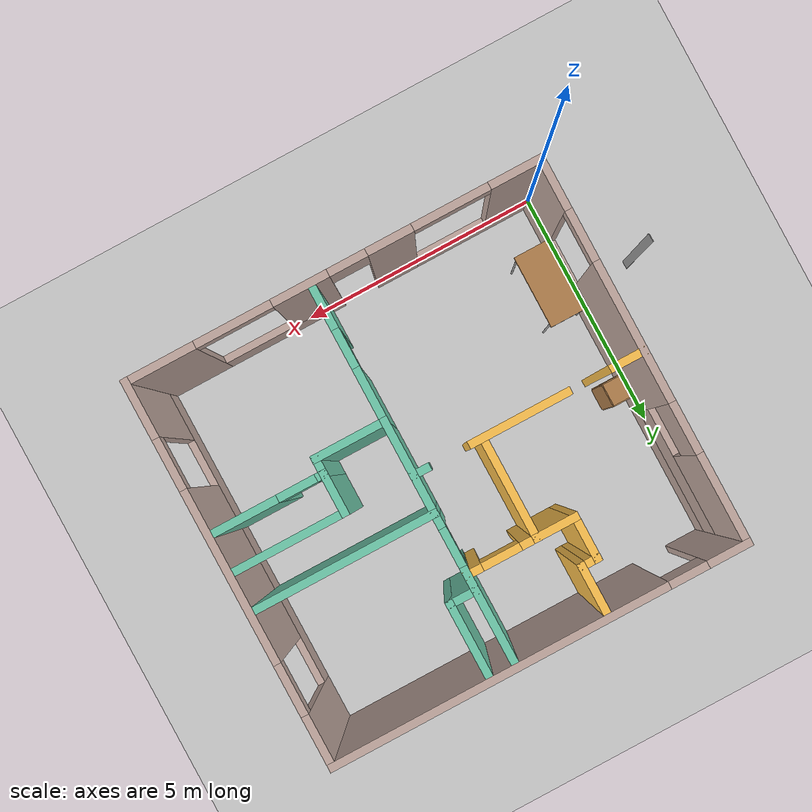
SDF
<sdf version="1.6">
 <world name="default">
  <plugin name="hello" filename="libhello.so"/>
  <light name="sun" type="directional">
   <pose>0 0 10 0 -0 0</pose>
   <diffuse>0.8 0.8 0.8 1</diffuse>
   <specular>0.2 0.2 0.2 1</specular>
   <attenuation>
    <range>1000</range>
    <constant>0.9</constant>
    <linear>0.01</linear>
    <quadratic>0.001</quadratic>
   </attenuation>
   <direction>-0.5 0.1 -0.9</direction>
   <spot><inner_angle>0</inner_angle><outer_angle>0</outer_angle><falloff>0</falloff></spot>
  </light>
  <model name="ground_plane">
   <static>1</static>
   <link name="link">
    <collision name="collision">
     <geometry><plane><normal>0 0 1</normal><size>100 100</size></plane></geometry>
     <surface>
      <contact><collide_bitmask>65535</collide_bitmask></contact>
      <friction><ode><mu>100</mu><mu2>50</mu2></ode></friction>
     </surface>
    </collision>
    <visual name="visual">
     <cast_shadows>0</cast_shadows>
     <geometry><plane><normal>0 0 1</normal><size>100 100</size></plane></geometry>
     <material>
      <script><uri>file://media/materials/scripts/gazebo.material</uri><name>Gazebo/Grey</name></script>
     </material>
    </visual>
   </link>
  </model>
  <gravity>0 0 -9.8</gravity>
  <magnetic_field>6e-06 2.3e-05 -4.2e-05</magnetic_field>
  <atmosphere type="adiabatic"/>
  <physics name="default_physics" default="0" type="ode">
   <max_step_size>0.001</max_step_size>
   <real_time_factor>1</real_time_factor>
   <real_time_update_rate>1000</real_time_update_rate>
  </physics>
  <scene><ambient>0.4 0.4 0.4 1</ambient><background>0.7 0.7 0.7 1</background><shadows>1</shadows></scene>
  <spherical_coordinates>
   <surface_model>EARTH_WGS84</surface_model>
   <latitude_deg>0</latitude_deg>
   <longitude_deg>0</longitude_deg>
   <elevation>0</elevation>
   <heading_deg>0</heading_deg>
  </spherical_coordinates>
  <model name="apartment">
   <pose>4.14003 3.78049 0 0 -0 0</pose>
   <link name="Door_1">
    <collision name="Door_1_Collision">
     <geometry><box><size>0.01 0.17 2</size></box></geometry>
     <pose>0 0 1 0 -0 0</pose>
    </collision>
    <visual name="Door_1_Visual">
     <pose>0 0 1 0 -0 0</pose>
     <geometry><box><size>0.01 0.17 2</size></box></geometry>
     <material>
      <script><uri>file://media/materials/scripts/gazebo.material</uri><name>Gazebo/Grey</name></script>
     </material>
    </visual>
    <pose>-5.25474 -1.71616 0 0 0 -3.11558</pose>
   </link>
   <link name="Wall_0">
    <pose>-0 3.75 0 0 -0 0</pose>
    <visual name="Wall_0_Visual_0">
     <pose>-3.7 0 1.25 0 -0 0</pose>
     <geometry><box><size>0.85 0.15 2.5</size></box></geometry>
     <material>
      <script><uri>file://media/materials/scripts/gazebo.material</uri><name>Gazebo/Grey</name></script>
      <ambient>0.760784 0.662745 0.627451 1</ambient>
     </material>
     <meta><layer>0</layer></meta>
    </visual>
    <collision name="Wall_0_Collision_0">
     <geometry><box><size>0.85 0.15 2.5</size></box></geometry>
     <pose>-3.7 0 1.25 0 -0 0</pose>
    </collision>
    <visual name="Wall_0_Visual_1">
     <pose>0.8 0 1.25 0 -0 0</pose>
     <geometry><box><size>6.65 0.15 2.5</size></box></geometry>
     <material>
      <script><uri>file://media/materials/scripts/gazebo.material</uri><name>Gazebo/Grey</name></script>
      <ambient>0.760784 0.662745 0.627451 1</ambient>
     </material>
     <meta><layer>0</layer></meta>
    </visual>
    <collision name="Wall_0_Collision_1">
     <geometry><box><size>6.65 0.15 2.5</size></box></geometry>
     <pose>0.8 0 1.25 0 -0 0</pose>
    </collision>
    <visual name="Wall_0_Visual_2">
     <pose>-2.9 0 2.25 0 -0 0</pose>
     <geometry><box><size>0.75 0.15 0.5</size></box></geometry>
     <material>
      <script><uri>file://media/materials/scripts/gazebo.material</uri><name>Gazebo/Grey</name></script>
      <ambient>0.760784 0.662745 0.627451 1</ambient>
     </material>
     <meta><layer>0</layer></meta>
    </visual>
    <collision name="Wall_0_Collision_2">
     <geometry><box><size>0.75 0.15 0.5</size></box></geometry>
     <pose>-2.9 0 2.25 0 -0 0</pose>
    </collision>
   </link>
   <link name="Wall_1">
    <pose>4.05 -0 0 0 -0 -1.5708</pose>
    <visual name="Wall_1_Visual_0">
     <pose>-3.2875 0 1.25 0 -0 0</pose>
     <geometry><box><size>1.075 0.15 2.5</size></box></geometry>
     <material>
      <script><uri>file://media/materials/scripts/gazebo.material</uri><name>Gazebo/Grey</name></script>
      <ambient>0.760784 0.662745 0.627451 1</ambient>
     </material>
     <meta><layer>0</layer></meta>
    </visual>
    <collision name="Wall_1_Collision_0">
     <geometry><box><size>1.075 0.15 2.5</size></box></geometry>
     <pose>-3.2875 0 1.25 0 -0 0</pose>
    </collision>
    <visual name="Wall_1_Visual_1">
     <pose>0.5375 0 0.25 0 -0 0</pose>
     <geometry><box><size>6.575 0.15 0.5</size></box></geometry>
     <material>
      <script><uri>file://media/materials/scripts/gazebo.material</uri><name>Gazebo/Grey</name></script>
      <ambient>0.760784 0.662745 0.627451 1</ambient>
     </material>
     <meta><layer>0</layer></meta>
    </visual>
    <collision name="Wall_1_Collision_1">
     <geometry><box><size>6.575 0.15 0.5</size></box></geometry>
     <pose>0.5375 0 0.25 0 -0 0</pose>
    </collision>
    <visual name="Wall_1_Visual_2">
     <pose>-0.050682 0 1.5 0 -0 0</pose>
     <geometry><box><size>3.39864 0.15 2</size></box></geometry>
     <material>
      <script><uri>file://media/materials/scripts/gazebo.material</uri><name>Gazebo/Grey</name></script>
      <ambient>0.760784 0.662745 0.627451 1</ambient>
     </material>
     <meta><layer>0</layer></meta>
    </visual>
    <collision name="Wall_1_Collision_2">
     <geometry><box><size>3.39864 0.15 2</size></box></geometry>
     <pose>-0.050682 0 1.5 0 -0 0</pose>
    </collision>
    <visual name="Wall_1_Visual_3">
     <pose>3.23682 0 1.5 0 -0 0</pose>
     <geometry><box><size>1.17636 0.15 2</size></box></geometry>
     <material>
      <script><uri>file://media/materials/scripts/gazebo.material</uri><name>Gazebo/Grey</name></script>
      <ambient>0.760784 0.662745 0.627451 1</ambient>
     </material>
     <meta><layer>0</layer></meta>
    </visual>
    <collision name="Wall_1_Collision_3">
     <geometry><box><size>1.17636 0.15 2</size></box></geometry>
     <pose>3.23682 0 1.5 0 -0 0</pose>
    </collision>
    <visual name="Wall_1_Visual_4">
     <pose>-2.25 0 2.4 0 -0 0</pose>
     <geometry><box><size>1 0.15 0.2</size></box></geometry>
     <material>
      <script><uri>file://media/materials/scripts/gazebo.material</uri><name>Gazebo/Grey</name></script>
      <ambient>0.760784 0.662745 0.627451 1</ambient>
     </material>
     <meta><layer>0</layer></meta>
    </visual>
    <collision name="Wall_1_Collision_4">
     <geometry><box><size>1 0.15 0.2</size></box></geometry>
     <pose>-2.25 0 2.4 0 -0 0</pose>
    </collision>
    <visual name="Wall_1_Visual_5">
     <pose>2.14864 0 2.4 0 -0 0</pose>
     <geometry><box><size>1 0.15 0.2</size></box></geometry>
     <material>
      <script><uri>file://media/materials/scripts/gazebo.material</uri><name>Gazebo/Grey</name></script>
      <ambient>0.760784 0.662745 0.627451 1</ambient>
     </material>
     <meta><layer>0</layer></meta>
    </visual>
    <collision name="Wall_1_Collision_5">
     <geometry><box><size>1 0.15 0.2</size></box></geometry>
     <pose>2.14864 0 2.4 0 -0 0</pose>
    </collision>
   </link>
   <link name="Wall_10">
    <collision name="Wall_10_Collision">
     <geometry><box><size>0.9 0.15 2.5</size></box></geometry>
     <pose>0 0 1.25 0 -0 0</pose>
    </collision>
    <visual name="Wall_10_Visual">
     <pose>0 0 1.25 0 -0 0</pose>
     <geometry><box><size>0.9 0.15 2.5</size></box></geometry>
     <material>
      <script><uri>file://media/materials/scripts/gazebo.material</uri><name>Gazebo/Grey</name></script>
      <ambient>0.435294 0.796078 0.67451 1</ambient>
     </material>
     <meta><layer>0</layer></meta>
    </visual>
    <pose>1.8 -0.375 0 0 -0 1.5708</pose>
   </link>
   <link name="Wall_11">
    <collision name="Wall_11_Collision">
     <geometry><box><size>2.25 0.15 2.5</size></box></geometry>
     <pose>0 0 1.25 0 -0 0</pose>
    </collision>
    <visual name="Wall_11_Visual">
     <pose>0 0 1.25 0 -0 0</pose>
     <geometry><box><size>2.25 0.15 2.5</size></box></geometry>
     <material>
      <script><uri>file://media/materials/scripts/gazebo.material</uri><name>Gazebo/Grey</name></script>
      <ambient>0.435294 0.796078 0.67451 1</ambient>
     </material>
     <meta><layer>0</layer></meta>
    </visual>
    <pose>2.85 -0 0 0 -0 0</pose>
   </link>
   <link name="Wall_13">
    <collision name="Wall_13_Collision">
     <geometry><box><size>3.6 0.15 2.5</size></box></geometry>
     <pose>0 0 1.25 0 -0 0</pose>
    </collision>
    <visual name="Wall_13_Visual">
     <pose>0 0 1.25 0 -0 0</pose>
     <geometry><box><size>3.6 0.15 2.5</size></box></geometry>
     <material>
      <script><uri>file://media/materials/scripts/gazebo.material</uri><name>Gazebo/Grey</name></script>
      <ambient>0.435294 0.796078 0.67451 1</ambient>
     </material>
     <meta><layer>0</layer></meta>
    </visual>
    <pose>2.175 0.75 0 0 -0 3.14159</pose>
   </link>
   <link name="Wall_14">
    <collision name="Wall_14_Collision">
     <geometry><box><size>1.95 0.15 2.5</size></box></geometry>
     <pose>0 0 1.25 0 -0 0</pose>
    </collision>
    <visual name="Wall_14_Visual">
     <pose>0 0 1.25 0 -0 0</pose>
     <geometry><box><size>1.95 0.15 2.5</size></box></geometry>
     <material>
      <script><uri>file://media/materials/scripts/gazebo.material</uri><name>Gazebo/Grey</name></script>
      <ambient>0.435294 0.796078 0.67451 1</ambient>
     </material>
     <meta><layer>0</layer></meta>
    </visual>
    <pose>0.45 -0.15 0 0 -0 -1.5708</pose>
   </link>
   <link name="Wall_16">
    <pose>0.45 2.175 0 0 -0 1.5708</pose>
    <visual name="Wall_16_Visual_0">
     <pose>-1.31932 0 1.25 0 -0 0</pose>
     <geometry><box><size>0.361363 0.15 2.5</size></box></geometry>
     <material>
      <script><uri>file://media/materials/scripts/gazebo.material</uri><name>Gazebo/Grey</name></script>
      <ambient>0.435294 0.796078 0.67451 1</ambient>
     </material>
     <meta><layer>0</layer></meta>
    </visual>
    <collision name="Wall_16_Collision_0">
     <geometry><box><size>0.361363 0.15 2.5</size></box></geometry>
     <pose>-1.31932 0 1.25 0 -0 0</pose>
    </collision>
    <visual name="Wall_16_Visual_1">
     <pose>0.555682 0 1.25 0 -0 0</pose>
     <geometry><box><size>1.88864 0.15 2.5</size></box></geometry>
     <material>
      <script><uri>file://media/materials/scripts/gazebo.material</uri><name>Gazebo/Grey</name></script>
      <ambient>0.435294 0.796078 0.67451 1</ambient>
     </material>
     <meta><layer>0</layer></meta>
    </visual>
    <collision name="Wall_16_Collision_1">
     <geometry><box><size>1.88864 0.15 2.5</size></box></geometry>
     <pose>0.555682 0 1.25 0 -0 0</pose>
    </collision>
    <visual name="Wall_16_Visual_2">
     <pose>-0.763637 0 2.25 0 -0 0</pose>
     <geometry><box><size>0.75 0.15 0.5</size></box></geometry>
     <material>
      <script><uri>file://media/materials/scripts/gazebo.material</uri><name>Gazebo/Grey</name></script>
      <ambient>0.435294 0.796078 0.67451 1</ambient>
     </material>
     <meta><layer>0</layer></meta>
    </visual>
    <collision name="Wall_16_Collision_2">
     <geometry><box><size>0.75 0.15 0.5</size></box></geometry>
     <pose>-0.763637 0 2.25 0 -0 0</pose>
    </collision>
   </link>
   <link name="Wall_18">
    <collision name="Wall_18_Collision">
     <geometry><box><size>0.65 0.15 2.5</size></box></geometry>
     <pose>0 0 1.25 0 -0 0</pose>
    </collision>
    <visual name="Wall_18_Visual">
     <pose>0 0 1.25 0 -0 0</pose>
     <geometry><box><size>0.65 0.15 2.5</size></box></geometry>
     <material>
      <script><uri>file://media/materials/scripts/gazebo.material</uri><name>Gazebo/Grey</name></script>
      <ambient>0.435294 0.796078 0.67451 1</ambient>
     </material>
     <meta><layer>0</layer></meta>
    </visual>
    <pose>0.7 2.25 0 0 -0 0</pose>
   </link>
   <link name="Wall_19">
    <collision name="Wall_19_Collision">
     <geometry><box><size>1.5 0.15 2.5</size></box></geometry>
     <pose>0 0 1.25 0 -0 0</pose>
    </collision>
    <visual name="Wall_19_Visual">
     <pose>0 0 1.25 0 -0 0</pose>
     <geometry><box><size>1.5 0.15 2.5</size></box></geometry>
     <material>
      <script><uri>file://media/materials/scripts/gazebo.material</uri><name>Gazebo/Grey</name></script>
      <ambient>0.435294 0.796078 0.67451 1</ambient>
     </material>
     <meta><layer>0</layer></meta>
    </visual>
    <pose>0.95 2.925 0 0 -0 1.5708</pose>
   </link>
   <link name="Wall_2">
    <pose>-0 -3.75 0 0 -0 3.14159</pose>
    <visual name="Wall_2_Visual_0">
     <pose>-3.4125 0 1.25 0 -0 0</pose>
     <geometry><box><size>1.425 0.15 2.5</size></box></geometry>
     <material>
      <script><uri>file://media/materials/scripts/gazebo.material</uri><name>Gazebo/Grey</name></script>
      <ambient>0.760784 0.662745 0.627451 1</ambient>
     </material>
     <meta><layer>0</layer></meta>
    </visual>
    <collision name="Wall_2_Collision_0">
     <geometry><box><size>1.425 0.15 2.5</size></box></geometry>
     <pose>-3.4125 0 1.25 0 -0 0</pose>
    </collision>
    <visual name="Wall_2_Visual_1">
     <pose>1.1 0 1.25 0 -0 0</pose>
     <geometry><box><size>0.899991 0.15 2.5</size></box></geometry>
     <material>
      <script><uri>file://media/materials/scripts/gazebo.material</uri><name>Gazebo/Grey</name></script>
      <ambient>0.760784 0.662745 0.627451 1</ambient>
     </material>
     <meta><layer>0</layer></meta>
    </visual>
    <collision name="Wall_2_Collision_1">
     <geometry><box><size>0.899991 0.15 2.5</size></box></geometry>
     <pose>1.1 0 1.25 0 -0 0</pose>
    </collision>
    <visual name="Wall_2_Visual_2">
     <pose>-1.4 0 0.25 0 -0 0</pose>
     <geometry><box><size>2.60001 0.15 0.5</size></box></geometry>
     <material>
      <script><uri>file://media/materials/scripts/gazebo.material</uri><name>Gazebo/Grey</name></script>
      <ambient>0.760784 0.662745 0.627451 1</ambient>
     </material>
     <meta><layer>0</layer></meta>
    </visual>
    <collision name="Wall_2_Collision_2">
     <geometry><box><size>2.60001 0.15 0.5</size></box></geometry>
     <pose>-1.4 0 0.25 0 -0 0</pose>
    </collision>
    <visual name="Wall_2_Visual_3">
     <pose>2.8375 0 0.25 0 -0 0</pose>
     <geometry><box><size>2.575 0.15 0.5</size></box></geometry>
     <material>
      <script><uri>file://media/materials/scripts/gazebo.material</uri><name>Gazebo/Grey</name></script>
      <ambient>0.760784 0.662745 0.627451 1</ambient>
     </material>
     <meta><layer>0</layer></meta>
    </visual>
    <collision name="Wall_2_Collision_3">
     <geometry><box><size>2.575 0.15 0.5</size></box></geometry>
     <pose>2.8375 0 0.25 0 -0 0</pose>
    </collision>
    <visual name="Wall_2_Visual_4">
     <pose>-0.649995 0 1.5 0 -0 0</pose>
     <geometry><box><size>1.10001 0.15 2</size></box></geometry>
     <material>
      <script><uri>file://media/materials/scripts/gazebo.material</uri><name>Gazebo/Grey</name></script>
      <ambient>0.760784 0.662745 0.627451 1</ambient>
     </material>
     <meta><layer>0</layer></meta>
    </visual>
    <collision name="Wall_2_Collision_4">
     <geometry><box><size>1.10001 0.15 2</size></box></geometry>
     <pose>-0.649995 0 1.5 0 -0 0</pose>
    </collision>
    <visual name="Wall_2_Visual_5">
     <pose>-0.649995 0 1.5 0 -0 0</pose>
     <geometry><box><size>1.10001 0.15 2</size></box></geometry>
     <material>
      <script><uri>file://media/materials/scripts/gazebo.material</uri><name>Gazebo/Grey</name></script>
      <ambient>0.760784 0.662745 0.627451 1</ambient>
     </material>
     <meta><layer>0</layer></meta>
    </visual>
    <collision name="Wall_2_Collision_5">
     <geometry><box><size>1.10001 0.15 2</size></box></geometry>
     <pose>-0.649995 0 1.5 0 -0 0</pose>
    </collision>
    <visual name="Wall_2_Visual_6">
     <pose>3.5875 0 1.5 0 -0 0</pose>
     <geometry><box><size>1.075 0.15 2</size></box></geometry>
     <material>
      <script><uri>file://media/materials/scripts/gazebo.material</uri><name>Gazebo/Grey</name></script>
      <ambient>0.760784 0.662745 0.627451 1</ambient>
     </material>
     <meta><layer>0</layer></meta>
    </visual>
    <collision name="Wall_2_Collision_6">
     <geometry><box><size>1.075 0.15 2</size></box></geometry>
     <pose>3.5875 0 1.5 0 -0 0</pose>
    </collision>
    <visual name="Wall_2_Visual_7">
     <pose>0.275009 0 2.25 0 -0 0</pose>
     <geometry><box><size>0.75 0.15 0.5</size></box></geometry>
     <material>
      <script><uri>file://media/materials/scripts/gazebo.material</uri><name>Gazebo/Grey</name></script>
      <ambient>0.760784 0.662745 0.627451 1</ambient>
     </material>
     <meta><layer>0</layer></meta>
    </visual>
    <collision name="Wall_2_Collision_7">
     <geometry><box><size>0.75 0.15 0.5</size></box></geometry>
     <pose>0.275009 0 2.25 0 -0 0</pose>
    </collision>
    <visual name="Wall_2_Visual_8">
     <pose>0.275009 0 2.25 0 -0 0</pose>
     <geometry><box><size>0.75 0.15 0.5</size></box></geometry>
     <material>
      <script><uri>file://media/materials/scripts/gazebo.material</uri><name>Gazebo/Grey</name></script>
      <ambient>0.760784 0.662745 0.627451 1</ambient>
     </material>
     <meta><layer>0</layer></meta>
    </visual>
    <collision name="Wall_2_Collision_8">
     <geometry><box><size>0.75 0.15 0.5</size></box></geometry>
     <pose>0.275009 0 2.25 0 -0 0</pose>
    </collision>
    <visual name="Wall_2_Visual_9">
     <pose>-1.95 0 2.4 0 -0 0</pose>
     <geometry><box><size>1.5 0.15 0.2</size></box></geometry>
     <material>
      <script><uri>file://media/materials/scripts/gazebo.material</uri><name>Gazebo/Grey</name></script>
      <ambient>0.760784 0.662745 0.627451 1</ambient>
     </material>
     <meta><layer>0</layer></meta>
    </visual>
    <collision name="Wall_2_Collision_9">
     <geometry><box><size>1.5 0.15 0.2</size></box></geometry>
     <pose>-1.95 0 2.4 0 -0 0</pose>
    </collision>
    <visual name="Wall_2_Visual_10">
     <pose>2.3 0 2.4 0 -0 0</pose>
     <geometry><box><size>1.5 0.15 0.2</size></box></geometry>
     <material>
      <script><uri>file://media/materials/scripts/gazebo.material</uri><name>Gazebo/Grey</name></script>
      <ambient>0.760784 0.662745 0.627451 1</ambient>
     </material>
     <meta><layer>0</layer></meta>
    </visual>
    <collision name="Wall_2_Collision_10">
     <geometry><box><size>1.5 0.15 0.2</size></box></geometry>
     <pose>2.3 0 2.4 0 -0 0</pose>
    </collision>
   </link>
   <link name="Wall_25">
    <collision name="Wall_25_Collision">
     <geometry><box><size>0.9 0.15 2.5</size></box></geometry>
     <pose>0 0 1.25 0 -0 0</pose>
    </collision>
    <visual name="Wall_25_Visual">
     <pose>0 0 1.25 0 -0 0</pose>
     <geometry><box><size>0.9 0.15 2.5</size></box></geometry>
     <material>
      <script><uri>file://media/materials/scripts/gazebo.material</uri><name>Gazebo/Grey</name></script>
      <ambient>1 0.764706 0.305882 1</ambient>
     </material>
     <meta><layer>0</layer></meta>
    </visual>
    <pose>-1.275 1.95 0 0 -0 3.14159</pose>
   </link>
   <link name="Wall_26">
    <collision name="Wall_26_Collision">
     <geometry><box><size>0.95 0.15 2.5</size></box></geometry>
     <pose>0 0 1.25 0 -0 0</pose>
    </collision>
    <visual name="Wall_26_Visual">
     <pose>0 0 1.25 0 -0 0</pose>
     <geometry><box><size>0.95 0.15 2.5</size></box></geometry>
     <material>
      <script><uri>file://media/materials/scripts/gazebo.material</uri><name>Gazebo/Grey</name></script>
      <ambient>1 0.764706 0.305882 1</ambient>
     </material>
     <meta><layer>0</layer></meta>
    </visual>
    <pose>-1.65 2.35 0 0 -0 1.5708</pose>
   </link>
   <link name="Wall_27">
    <collision name="Wall_27_Collision">
     <geometry><box><size>0.45 0.15 2.5</size></box></geometry>
     <pose>0 0 1.25 0 -0 0</pose>
    </collision>
    <visual name="Wall_27_Visual">
     <pose>0 0 1.25 0 -0 0</pose>
     <geometry><box><size>0.45 0.15 2.5</size></box></geometry>
     <material>
      <script><uri>file://media/materials/scripts/gazebo.material</uri><name>Gazebo/Grey</name></script>
      <ambient>1 0.764706 0.305882 1</ambient>
     </material>
     <meta><layer>0</layer></meta>
    </visual>
    <pose>-1.5 2.75 0 0 -0 0</pose>
   </link>
   <link name="Wall_28">
    <collision name="Wall_28_Collision">
     <geometry><box><size>1 0.15 2.5</size></box></geometry>
     <pose>0 0 1.25 0 -0 0</pose>
    </collision>
    <visual name="Wall_28_Visual">
     <pose>0 0 1.25 0 -0 0</pose>
     <geometry><box><size>1 0.15 2.5</size></box></geometry>
     <material>
      <script><uri>file://media/materials/scripts/gazebo.material</uri><name>Gazebo/Grey</name></script>
      <ambient>1 0.764706 0.305882 1</ambient>
     </material>
     <meta><layer>0</layer></meta>
    </visual>
    <pose>-1.35 3.175 0 0 -0 1.5708</pose>
   </link>
   <link name="Wall_3">
    <pose>-4.05 -0 0 0 -0 1.5708</pose>
    <visual name="Wall_3_Visual_0">
     <pose>-3.2875 0 1.25 0 -0 0</pose>
     <geometry><box><size>1.075 0.15 2.5</size></box></geometry>
     <material>
      <script><uri>file://media/materials/scripts/gazebo.material</uri><name>Gazebo/Grey</name></script>
      <ambient>0.760784 0.662745 0.627451 1</ambient>
     </material>
     <meta><layer>0</layer></meta>
    </visual>
    <collision name="Wall_3_Collision_0">
     <geometry><box><size>1.075 0.15 2.5</size></box></geometry>
     <pose>-3.2875 0 1.25 0 -0 0</pose>
    </collision>
    <visual name="Wall_3_Visual_1">
     <pose>0.5375 0 0.25 0 -0 0</pose>
     <geometry><box><size>6.575 0.15 0.5</size></box></geometry>
     <material>
      <script><uri>file://media/materials/scripts/gazebo.material</uri><name>Gazebo/Grey</name></script>
      <ambient>0.760784 0.662745 0.627451 1</ambient>
     </material>
     <meta><layer>0</layer></meta>
    </visual>
    <collision name="Wall_3_Collision_1">
     <geometry><box><size>6.575 0.15 0.5</size></box></geometry>
     <pose>0.5375 0 0.25 0 -0 0</pose>
    </collision>
    <visual name="Wall_3_Visual_2">
     <pose>-0.375 0 1.5 0 -0 0</pose>
     <geometry><box><size>2.75 0.15 2</size></box></geometry>
     <material>
      <script><uri>file://media/materials/scripts/gazebo.material</uri><name>Gazebo/Grey</name></script>
      <ambient>0.760784 0.662745 0.627451 1</ambient>
     </material>
     <meta><layer>0</layer></meta>
    </visual>
    <collision name="Wall_3_Collision_2">
     <geometry><box><size>2.75 0.15 2</size></box></geometry>
     <pose>-0.375 0 1.5 0 -0 0</pose>
    </collision>
    <visual name="Wall_3_Visual_3">
     <pose>2.4125 0 0.825 0 -0 0</pose>
     <geometry><box><size>2.825 0.15 0.65</size></box></geometry>
     <material>
      <script><uri>file://media/materials/scripts/gazebo.material</uri><name>Gazebo/Grey</name></script>
      <ambient>0.760784 0.662745 0.627451 1</ambient>
     </material>
     <meta><layer>0</layer></meta>
    </visual>
    <collision name="Wall_3_Collision_3">
     <geometry><box><size>2.825 0.15 0.65</size></box></geometry>
     <pose>2.4125 0 0.825 0 -0 0</pose>
    </collision>
    <visual name="Wall_3_Visual_4">
     <pose>2.9125 0 1.825 0 -0 0</pose>
     <geometry><box><size>1.825 0.15 1.35</size></box></geometry>
     <material>
      <script><uri>file://media/materials/scripts/gazebo.material</uri><name>Gazebo/Grey</name></script>
      <ambient>0.760784 0.662745 0.627451 1</ambient>
     </material>
     <meta><layer>0</layer></meta>
    </visual>
    <collision name="Wall_3_Collision_4">
     <geometry><box><size>1.825 0.15 1.35</size></box></geometry>
     <pose>2.9125 0 1.825 0 -0 0</pose>
    </collision>
    <visual name="Wall_3_Visual_5">
     <pose>1.5 0 2.075 0 -0 0</pose>
     <geometry><box><size>1 0.15 0.85</size></box></geometry>
     <material>
      <script><uri>file://media/materials/scripts/gazebo.material</uri><name>Gazebo/Grey</name></script>
      <ambient>0.760784 0.662745 0.627451 1</ambient>
     </material>
     <meta><layer>0</layer></meta>
    </visual>
    <collision name="Wall_3_Collision_5">
     <geometry><box><size>1 0.15 0.85</size></box></geometry>
     <pose>1.5 0 2.075 0 -0 0</pose>
    </collision>
    <visual name="Wall_3_Visual_6">
     <pose>-2.25 0 2.4 0 -0 0</pose>
     <geometry><box><size>1 0.15 0.2</size></box></geometry>
     <material>
      <script><uri>file://media/materials/scripts/gazebo.material</uri><name>Gazebo/Grey</name></script>
      <ambient>0.760784 0.662745 0.627451 1</ambient>
     </material>
     <meta><layer>0</layer></meta>
    </visual>
    <collision name="Wall_3_Collision_6">
     <geometry><box><size>1 0.15 0.2</size></box></geometry>
     <pose>-2.25 0 2.4 0 -0 0</pose>
    </collision>
   </link>
   <link name="Wall_33">
    <collision name="Wall_33_Collision">
     <geometry><box><size>2 0.15 2.5</size></box></geometry>
     <pose>0 0 1.25 0 -0 0</pose>
    </collision>
    <visual name="Wall_33_Visual">
     <pose>0 0 1.25 0 -0 0</pose>
     <geometry><box><size>2 0.15 2.5</size></box></geometry>
     <material>
      <script><uri>file://media/materials/scripts/gazebo.material</uri><name>Gazebo/Grey</name></script>
      <ambient>1 0.764706 0.305882 1</ambient>
     </material>
     <meta><layer>0</layer></meta>
    </visual>
    <pose>-1.625 -0 0 0 -0 3.14159</pose>
   </link>
   <link name="Wall_35">
    <collision name="Wall_35_Collision">
     <geometry><box><size>0.735 0.15 2.5</size></box></geometry>
     <pose>0 0 1.25 0 -0 0</pose>
    </collision>
    <visual name="Wall_35_Visual">
     <pose>0 0 1.25 0 -0 0</pose>
     <geometry><box><size>0.735 0.15 2.5</size></box></geometry>
     <material>
      <script><uri>file://media/materials/scripts/gazebo.material</uri><name>Gazebo/Grey</name></script>
      <ambient>1 0.764706 0.305882 1</ambient>
     </material>
     <meta><layer>0</layer></meta>
    </visual>
    <pose>-3.7425 -0 0 0 -0 0</pose>
   </link>
   <link name="Wall_38">
    <collision name="Wall_38_Collision">
     <geometry><box><size>0.4 0.15 2.5</size></box></geometry>
     <pose>0 0 1.25 0 -0 0</pose>
    </collision>
    <visual name="Wall_38_Visual">
     <pose>0 0 1.25 0 -0 0</pose>
     <geometry><box><size>0.4 0.15 2.5</size></box></geometry>
     <material>
      <script><uri>file://media/materials/scripts/gazebo.material</uri><name>Gazebo/Grey</name></script>
      <ambient>0.435294 0.796078 0.67451 1</ambient>
     </material>
     <meta><layer>0</layer></meta>
    </visual>
    <pose>0.325 -0 0 0 -0 3.14159</pose>
   </link>
   <link name="Wall_40">
    <collision name="Wall_40_Collision">
     <geometry><box><size>2 0.15 2.5</size></box></geometry>
     <pose>0 0 1.25 0 -0 0</pose>
    </collision>
    <visual name="Wall_40_Visual">
     <pose>0 0 1.25 0 -0 0</pose>
     <geometry><box><size>2 0.15 2.5</size></box></geometry>
     <material>
      <script><uri>file://media/materials/scripts/gazebo.material</uri><name>Gazebo/Grey</name></script>
      <ambient>1 0.764706 0.305882 1</ambient>
     </material>
     <meta><layer>0</layer></meta>
    </visual>
    <pose>-0.9 1.025 0 0 -0 -1.5708</pose>
   </link>
   <link name="Wall_42">
    <pose>-0.225 1.95 0 0 -0 0</pose>
    <visual name="Wall_42_Visual_0">
     <pose>-0.557505 0 1.25 0 -0 0</pose>
     <geometry><box><size>0.384991 0.15 2.5</size></box></geometry>
     <material>
      <script><uri>file://media/materials/scripts/gazebo.material</uri><name>Gazebo/Grey</name></script>
      <ambient>1 0.764706 0.305882 1</ambient>
     </material>
     <meta><layer>0</layer></meta>
    </visual>
    <collision name="Wall_42_Collision_0">
     <geometry><box><size>0.384991 0.15 2.5</size></box></geometry>
     <pose>-0.557505 0 1.25 0 -0 0</pose>
    </collision>
    <visual name="Wall_42_Visual_1">
     <pose>0.567495 0 1.25 0 -0 0</pose>
     <geometry><box><size>0.365009 0.15 2.5</size></box></geometry>
     <material>
      <script><uri>file://media/materials/scripts/gazebo.material</uri><name>Gazebo/Grey</name></script>
      <ambient>1 0.764706 0.305882 1</ambient>
     </material>
     <meta><layer>0</layer></meta>
    </visual>
    <collision name="Wall_42_Collision_1">
     <geometry><box><size>0.365009 0.15 2.5</size></box></geometry>
     <pose>0.567495 0 1.25 0 -0 0</pose>
    </collision>
    <visual name="Wall_42_Visual_2">
     <pose>0.009991 0 2.25 0 -0 0</pose>
     <geometry><box><size>0.75 0.15 0.5</size></box></geometry>
     <material>
      <script><uri>file://media/materials/scripts/gazebo.material</uri><name>Gazebo/Grey</name></script>
      <ambient>1 0.764706 0.305882 1</ambient>
     </material>
     <meta><layer>0</layer></meta>
    </visual>
    <collision name="Wall_42_Collision_2">
     <geometry><box><size>0.75 0.15 0.5</size></box></geometry>
     <pose>0.009991 0 2.25 0 -0 0</pose>
    </collision>
   </link>
   <link name="Wall_5">
    <pose>0.45 -2.325 0 0 -0 1.5708</pose>
    <visual name="Wall_5_Visual_0">
     <pose>-0.934318 0 1.25 0 -0 0</pose>
     <geometry><box><size>0.831364 0.15 2.5</size></box></geometry>
     <material>
      <script><uri>file://media/materials/scripts/gazebo.material</uri><name>Gazebo/Grey</name></script>
      <ambient>0.435294 0.796078 0.67451 1</ambient>
     </material>
     <meta><layer>0</layer></meta>
    </visual>
    <collision name="Wall_5_Collision_0">
     <geometry><box><size>0.831364 0.15 2.5</size></box></geometry>
     <pose>-0.934318 0 1.25 0 -0 0</pose>
    </collision>
    <visual name="Wall_5_Visual_1">
     <pose>0.790682 0 1.25 0 -0 0</pose>
     <geometry><box><size>1.11864 0.15 2.5</size></box></geometry>
     <material>
      <script><uri>file://media/materials/scripts/gazebo.material</uri><name>Gazebo/Grey</name></script>
      <ambient>0.435294 0.796078 0.67451 1</ambient>
     </material>
     <meta><layer>0</layer></meta>
    </visual>
    <collision name="Wall_5_Collision_1">
     <geometry><box><size>1.11864 0.15 2.5</size></box></geometry>
     <pose>0.790682 0 1.25 0 -0 0</pose>
    </collision>
    <visual name="Wall_5_Visual_2">
     <pose>-0.143636 0 2.25 0 -0 0</pose>
     <geometry><box><size>0.75 0.15 0.5</size></box></geometry>
     <material>
      <script><uri>file://media/materials/scripts/gazebo.material</uri><name>Gazebo/Grey</name></script>
      <ambient>0.435294 0.796078 0.67451 1</ambient>
     </material>
     <meta><layer>0</layer></meta>
    </visual>
    <collision name="Wall_5_Collision_2">
     <geometry><box><size>0.75 0.15 0.5</size></box></geometry>
     <pose>-0.143636 0 2.25 0 -0 0</pose>
    </collision>
   </link>
   <link name="Wall_6">
    <collision name="Wall_6_Collision">
     <geometry><box><size>1.5 0.15 2.5</size></box></geometry>
     <pose>0 0 1.25 0 -0 0</pose>
    </collision>
    <visual name="Wall_6_Visual">
     <pose>0 0 1.25 0 -0 0</pose>
     <geometry><box><size>1.5 0.15 2.5</size></box></geometry>
     <material>
      <script><uri>file://media/materials/scripts/gazebo.material</uri><name>Gazebo/Grey</name></script>
      <ambient>0.435294 0.796078 0.67451 1</ambient>
     </material>
     <meta><layer>0</layer></meta>
    </visual>
    <pose>1.125 -1.05 0 0 -0 0</pose>
   </link>
   <link name="Wall_7">
    <collision name="Wall_7_Collision">
     <geometry><box><size>0.45 0.15 2.5</size></box></geometry>
     <pose>0 0 1.25 0 -0 0</pose>
    </collision>
    <visual name="Wall_7_Visual">
     <pose>0 0 1.25 0 -0 0</pose>
     <geometry><box><size>0.45 0.15 2.5</size></box></geometry>
     <material>
      <script><uri>file://media/materials/scripts/gazebo.material</uri><name>Gazebo/Grey</name></script>
      <ambient>0.435294 0.796078 0.67451 1</ambient>
     </material>
     <meta><layer>0</layer></meta>
    </visual>
    <pose>1.8 -0.9 0 0 -0 1.5708</pose>
   </link>
   <link name="Wall_8">
    <pose>2.85 -0.75 0 0 -0 0</pose>
    <visual name="Wall_8_Visual_0">
     <pose>-1.01319 0 1.25 0 -0 0</pose>
     <geometry><box><size>0.223613 0.15 2.5</size></box></geometry>
     <material>
      <script><uri>file://media/materials/scripts/gazebo.material</uri><name>Gazebo/Grey</name></script>
      <ambient>0.435294 0.796078 0.67451 1</ambient>
     </material>
     <meta><layer>0</layer></meta>
    </visual>
    <collision name="Wall_8_Collision_0">
     <geometry><box><size>0.223613 0.15 2.5</size></box></geometry>
     <pose>-1.01319 0 1.25 0 -0 0</pose>
    </collision>
    <visual name="Wall_8_Visual_1">
     <pose>0.486807 0 1.25 0 -0 0</pose>
     <geometry><box><size>1.27639 0.15 2.5</size></box></geometry>
     <material>
      <script><uri>file://media/materials/scripts/gazebo.material</uri><name>Gazebo/Grey</name></script>
      <ambient>0.435294 0.796078 0.67451 1</ambient>
     </material>
     <meta><layer>0</layer></meta>
    </visual>
    <collision name="Wall_8_Collision_1">
     <geometry><box><size>1.27639 0.15 2.5</size></box></geometry>
     <pose>0.486807 0 1.25 0 -0 0</pose>
    </collision>
    <visual name="Wall_8_Visual_2">
     <pose>-0.526387 0 2.25 0 -0 0</pose>
     <geometry><box><size>0.75 0.15 0.5</size></box></geometry>
     <material>
      <script><uri>file://media/materials/scripts/gazebo.material</uri><name>Gazebo/Grey</name></script>
      <ambient>0.435294 0.796078 0.67451 1</ambient>
     </material>
     <meta><layer>0</layer></meta>
    </visual>
    <collision name="Wall_8_Collision_2">
     <geometry><box><size>0.75 0.15 0.5</size></box></geometry>
     <pose>-0.526387 0 2.25 0 -0 0</pose>
    </collision>
   </link>
   <static>1</static>
  </model>
  <model name="table">
   <static>1</static>
   <link name="link">
    <collision name="surface">
     <pose>0 0 1 0 -0 0</pose>
     <geometry><box><size>1.5 0.8 0.03</size></box></geometry>
     <surface><friction><ode><mu>0.6</mu><mu2>0.6</mu2></ode></friction></surface>
    </collision>
    <visual name="visual1">
     <pose>0 0 1 0 -0 0</pose>
     <geometry><box><size>1.5 0.8 0.03</size></box></geometry>
     <material>
      <script><uri>file://media/materials/scripts/gazebo.material</uri><name>Gazebo/Wood</name></script>
     </material>
    </visual>
    <collision name="front_left_leg">
     <pose>0.68 0.38 0.5 0 -0 0</pose>
     <geometry><cylinder><radius>0.02</radius><length>1</length></cylinder></geometry>
    </collision>
    <visual name="front_left_leg">
     <pose>0.68 0.38 0.5 0 -0 0</pose>
     <geometry><cylinder><radius>0.02</radius><length>1</length></cylinder></geometry>
     <material>
      <script><uri>file://media/materials/scripts/gazebo.material</uri><name>Gazebo/Grey</name></script>
     </material>
    </visual>
    <collision name="front_right_leg">
     <pose>0.68 -0.38 0.5 0 -0 0</pose>
     <geometry><cylinder><radius>0.02</radius><length>1</length></cylinder></geometry>
    </collision>
    <visual name="front_right_leg">
     <pose>0.68 -0.38 0.5 0 -0 0</pose>
     <geometry><cylinder><radius>0.02</radius><length>1</length></cylinder></geometry>
     <material>
      <script><uri>file://media/materials/scripts/gazebo.material</uri><name>Gazebo/Grey</name></script>
     </material>
    </visual>
    <collision name="back_right_leg">
     <pose>-0.68 -0.38 0.5 0 -0 0</pose>
     <geometry><cylinder><radius>0.02</radius><length>1</length></cylinder></geometry>
    </collision>
    <visual name="back_right_leg">
     <pose>-0.68 -0.38 0.5 0 -0 0</pose>
     <geometry><cylinder><radius>0.02</radius><length>1</length></cylinder></geometry>
     <material>
      <script><uri>file://media/materials/scripts/gazebo.material</uri><name>Gazebo/Grey</name></script>
     </material>
    </visual>
    <collision name="back_left_leg">
     <pose>-0.68 0.38 0.5 0 -0 0</pose>
     <geometry><cylinder><radius>0.02</radius><length>1</length></cylinder></geometry>
    </collision>
    <visual name="back_left_leg">
     <pose>-0.68 0.38 0.5 0 -0 0</pose>
     <geometry><cylinder><radius>0.02</radius><length>1</length></cylinder></geometry>
     <material>
      <script><uri>file://media/materials/scripts/gazebo.material</uri><name>Gazebo/Grey</name></script>
     </material>
    </visual>
   </link>
   <pose>0.6 1.8 0 0 -0 1.5707</pose>
  </model>
  <model name="cabinet">
   <static>1</static>
   <link name="cabinet_bottom_plate">
    <inertial>
     <pose>0 0 -1 0 -0 0</pose>
     <inertia><ixx>2.05</ixx><ixy>0</ixy><ixz>0</ixz><iyy>2.05</iyy><iyz>0</iyz><izz>2.05</izz></inertia>
     <mass>25</mass>
    </inertial>
    <collision name="cabinet_bottom_plate_geom">
     <pose>0 0 0.01 0 -0 0</pose>
     <geometry><box><size>0.45 0.45 0.02</size></box></geometry>
    </collision>
    <visual name="cabinet_bottom_plate_geom_visual">
     <pose>0 0 0.01 0 -0 0</pose>
     <geometry><box><size>0.45 0.45 0.02</size></box></geometry>
     <material>
      <script><uri>file://media/materials/scripts/gazebo.material</uri><name>Gazebo/Wood</name></script>
     </material>
    </visual>
    <collision name="cabinet_bottom_plate_geom_cabinet_back_plate">
     <pose>0.235 0 0.51 0 -0 0</pose>
     <geometry><box><size>0.02 0.45 1.02</size></box></geometry>
    </collision>
    <visual name="cabinet_bottom_plate_geom_cabinet_back_plate_visual">
     <pose>0.235 0 0.51 0 -0 0</pose>
     <geometry><box><size>0.02 0.45 1.02</size></box></geometry>
     <material>
      <script><uri>file://media/materials/scripts/gazebo.material</uri><name>Gazebo/Wood</name></script>
     </material>
    </visual>
    <collision name="cabinet_bottom_plate_geom_cabinet_left_plate">
     <pose>0 0.235 0.51 0 -0 0</pose>
     <geometry><box><size>0.45 0.02 1.02</size></box></geometry>
    </collision>
    <visual name="cabinet_bottom_plate_geom_cabinet_left_plate_visual">
     <pose>0 0.235 0.51 0 -0 0</pose>
     <geometry><box><size>0.45 0.02 1.02</size></box></geometry>
     <material>
      <script><uri>file://media/materials/scripts/gazebo.material</uri><name>Gazebo/Wood</name></script>
     </material>
    </visual>
    <collision name="cabinet_bottom_plate_geom_cabinet_middle_plate">
     <pose>0 0 0.51 0 -0 0</pose>
     <geometry><box><size>0.45 0.45 0.02</size></box></geometry>
    </collision>
    <visual name="cabinet_bottom_plate_geom_cabinet_middle_plate_visual">
     <pose>0 0 0.51 0 -0 0</pose>
     <geometry><box><size>0.45 0.45 0.02</size></box></geometry>
     <material>
      <script><uri>file://media/materials/scripts/gazebo.material</uri><name>Gazebo/Wood</name></script>
     </material>
    </visual>
    <collision name="cabinet_bottom_plate_geom_cabinet_right_plate">
     <pose>0 -0.235 0.51 0 -0 0</pose>
     <geometry><box><size>0.45 0.02 1.02</size></box></geometry>
    </collision>
    <visual name="cabinet_bottom_plate_geom_cabinet_right_plate_visual">
     <pose>0 -0.235 0.51 0 -0 0</pose>
     <geometry><box><size>0.45 0.02 1.02</size></box></geometry>
     <material>
      <script><uri>file://media/materials/scripts/gazebo.material</uri><name>Gazebo/Wood</name></script>
     </material>
    </visual>
    <collision name="cabinet_bottom_plate_geom_cabinet_top_plate">
     <pose>0 0 1.01 0 -0 0</pose>
     <geometry><box><size>0.45 0.45 0.02</size></box></geometry>
    </collision>
    <visual name="cabinet_bottom_plate_geom_cabinet_top_plate_visual">
     <pose>0 0 1.01 0 -0 0</pose>
     <geometry><box><size>0.45 0.45 0.02</size></box></geometry>
     <material>
      <script><uri>file://media/materials/scripts/gazebo.material</uri><name>Gazebo/Wood</name></script>
     </material>
    </visual>
   </link>
   <pose>0.43974 4.2 0 0 -0 0</pose>
  </model>
 </world>
</sdf>
